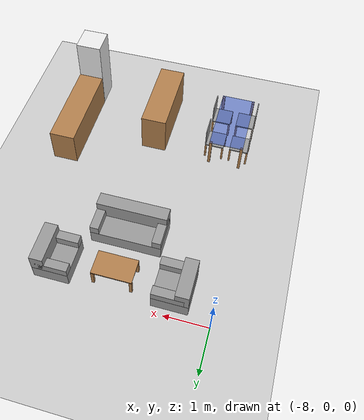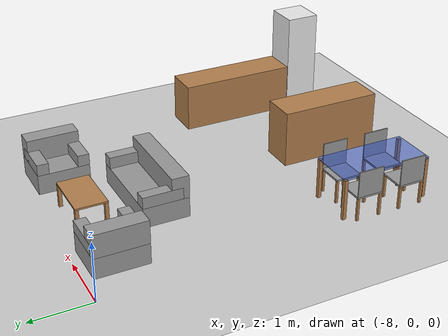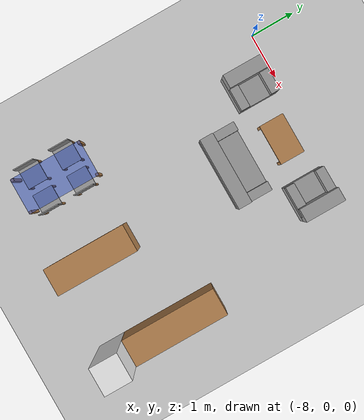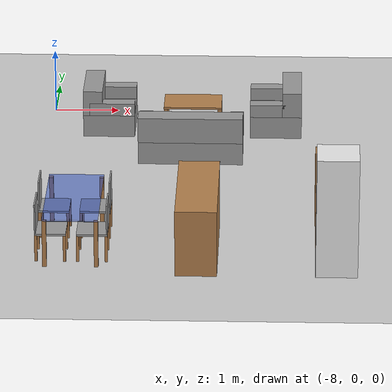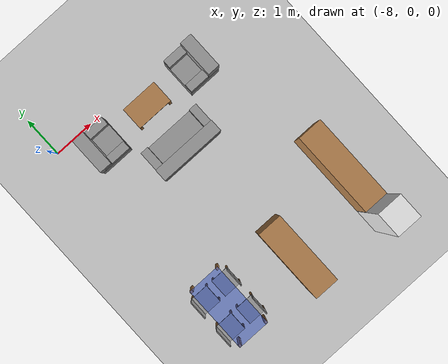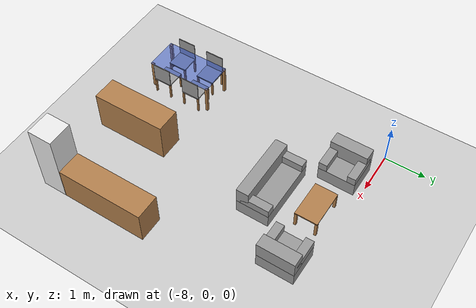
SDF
<sdf version="1.4">
 <world name="GrannyAnnie">
  <model name="ground_plane">
   <static>1</static>
   <link name="link">
    <collision name="collision">
     <geometry><plane><normal>0 0 1</normal><size>100 100</size></plane></geometry>
     <surface><friction><ode><mu>100</mu><mu2>100</mu2></ode></friction></surface>
    </collision>
    <visual name="visual">
     <cast_shadows>0</cast_shadows>
     <geometry><plane><normal>0 0 1</normal><size>100 100</size></plane></geometry>
     <material>
      <script><uri>file://media/materials/scripts/gazebo.material</uri><name>Gazebo/Grey</name></script>
     </material>
    </visual>
    <velocity_decay><linear>0</linear><angular>0</angular></velocity_decay>
   </link>
  </model>
  <model name="mesa_comedor">
   <link name="mesa_link">
    <inertial>
     <pose>1.58603e-17 0 0.513571 0 -0 0</pose>
     <mass>7</mass>
     <inertia>
      <ixx>1.28229</ixx>
      <ixy>0</ixy>
      <ixz>5.70179e-17</ixz>
      <iyy>3.10629</iyy>
      <iyz>0</iyz>
      <izz>3.4192</izz>
     </inertia>
    </inertial>
    <collision name="mesa_link_collision">
     <pose>0 0 0.725 0 -0 0</pose>
     <geometry><box><size>1.6 0.8 0.03</size></box></geometry>
     <surface><friction><ode><mu>100</mu><mu2>100</mu2></ode></friction></surface>
    </collision>
    <collision name="mesa_link_collision_pata_1_link">
     <pose>0.77 0.37 0.355 0 -0 0</pose>
     <geometry><box><size>0.06 0.06 0.71</size></box></geometry>
     <surface><friction><ode><mu>100</mu><mu2>100</mu2></ode></friction></surface>
     <surface><friction><ode><mu>100</mu><mu2>100</mu2></ode></friction></surface>
    </collision>
    <collision name="mesa_link_collision_pata_2_link">
     <pose>0.77 -0.37 0.355 0 -0 0</pose>
     <geometry><box><size>0.06 0.06 0.71</size></box></geometry>
     <surface><friction><ode><mu>100</mu><mu2>100</mu2></ode></friction></surface>
     <surface><friction><ode><mu>100</mu><mu2>100</mu2></ode></friction></surface>
    </collision>
    <collision name="mesa_link_collision_pata_3_link">
     <pose>-0.77 -0.37 0.355 0 -0 0</pose>
     <geometry><box><size>0.06 0.06 0.71</size></box></geometry>
     <surface><friction><ode><mu>100</mu><mu2>100</mu2></ode></friction></surface>
     <surface><friction><ode><mu>100</mu><mu2>100</mu2></ode></friction></surface>
    </collision>
    <collision name="mesa_link_collision_pata_4_link">
     <pose>-0.77 0.37 0.355 0 -0 0</pose>
     <geometry><box><size>0.06 0.06 0.71</size></box></geometry>
     <surface><friction><ode><mu>100</mu><mu2>100</mu2></ode></friction></surface>
     <surface><friction><ode><mu>100</mu><mu2>100</mu2></ode></friction></surface>
    </collision>
    <visual name="mesa_link_visual">
     <pose>0 0 0.725 0 -0 0</pose>
     <geometry><box><size>1.6 0.8 0.03</size></box></geometry>
     <material><script><name>Gazebo/BlueTransparent</name><uri>__default__</uri></script></material>
    </visual>
    <visual name="mesa_link_visual_pata_1_link">
     <pose>0.77 0.37 0.355 0 -0 0</pose>
     <geometry><box><size>0.06 0.06 0.71</size></box></geometry>
     <material><script><name>Gazebo/Wood</name><uri>__default__</uri></script></material>
    </visual>
    <visual name="mesa_link_visual_pata_2_link">
     <pose>0.77 -0.37 0.355 0 -0 0</pose>
     <geometry><box><size>0.06 0.06 0.71</size></box></geometry>
     <material><script><name>Gazebo/Wood</name><uri>__default__</uri></script></material>
    </visual>
    <visual name="mesa_link_visual_pata_3_link">
     <pose>-0.77 -0.37 0.355 0 -0 0</pose>
     <geometry><box><size>0.06 0.06 0.71</size></box></geometry>
     <material><script><name>Gazebo/Wood</name><uri>__default__</uri></script></material>
    </visual>
    <visual name="mesa_link_visual_pata_4_link">
     <pose>-0.77 0.37 0.355 0 -0 0</pose>
     <geometry><box><size>0.06 0.06 0.71</size></box></geometry>
     <material><script><name>Gazebo/Wood</name><uri>__default__</uri></script></material>
    </visual>
    <velocity_decay><linear>0</linear><angular>0</angular></velocity_decay>
    <velocity_decay><linear>0</linear><angular>0</angular></velocity_decay>
    <velocity_decay><linear>0</linear><angular>0</angular></velocity_decay>
    <velocity_decay><linear>0</linear><angular>0</angular></velocity_decay>
    <velocity_decay><linear>0</linear><angular>0</angular></velocity_decay>
    <self_collide>1</self_collide>
   </link>
   <pose>-7.4 -5 0 0 -0 1.57</pose>
   <static>0</static>
  </model>
  <model name="silla_1">
   <link name="silla_link">
    <inertial>
     <pose>0.0215 0 0.353 0 -0 0</pose>
     <mass>2</mass>
     <inertia>
      <ixx>0.674432</ixx>
      <ixy>0</ixy>
      <ixz>-0.012986</ixz>
      <iyy>0.682753</iyy>
      <iyz>0</iyz>
      <izz>0.675561</izz>
     </inertia>
    </inertial>
    <collision name="silla_link_collision">
     <pose>0 0 0.415 0 -0 0</pose>
     <geometry><box><size>0.45 0.45 0.03</size></box></geometry>
     <surface><friction><ode><mu>100</mu><mu2>100</mu2></ode></friction></surface>
    </collision>
    <collision name="silla_link_collision_pata_1_link">
     <pose>0.205 0.205 0.2 0 -0 0</pose>
     <geometry><box><size>0.04 0.04 0.4</size></box></geometry>
     <surface><friction><ode><mu>100</mu><mu2>100</mu2></ode></friction></surface>
     <surface><friction><ode><mu>100</mu><mu2>100</mu2></ode></friction></surface>
    </collision>
    <collision name="silla_link_collision_pata_2_link">
     <pose>0.205 -0.205 0.2 0 -0 0</pose>
     <geometry><box><size>0.04 0.04 0.4</size></box></geometry>
     <surface><friction><ode><mu>100</mu><mu2>100</mu2></ode></friction></surface>
     <surface><friction><ode><mu>100</mu><mu2>100</mu2></ode></friction></surface>
    </collision>
    <collision name="silla_link_collision_pata_3_link">
     <pose>-0.205 -0.205 0.2 0 -0 0</pose>
     <geometry><box><size>0.04 0.04 0.4</size></box></geometry>
     <surface><friction><ode><mu>100</mu><mu2>100</mu2></ode></friction></surface>
     <surface><friction><ode><mu>100</mu><mu2>100</mu2></ode></friction></surface>
    </collision>
    <collision name="silla_link_collision_pata_4_link">
     <pose>-0.205 0.205 0.2 0 -0 0</pose>
     <geometry><box><size>0.04 0.04 0.4</size></box></geometry>
     <surface><friction><ode><mu>100</mu><mu2>100</mu2></ode></friction></surface>
     <surface><friction><ode><mu>100</mu><mu2>100</mu2></ode></friction></surface>
    </collision>
    <collision name="silla_link_collision_respaldo_link">
     <pose>0.215 0 0.655 0 -0 0</pose>
     <geometry><box><size>0.02 0.45 0.45</size></box></geometry>
     <surface><friction><ode><mu>100</mu><mu2>100</mu2></ode></friction></surface>
     <surface><friction><ode><mu>100</mu><mu2>100</mu2></ode></friction></surface>
    </collision>
    <visual name="silla_link_visual">
     <pose>0 0 0.415 0 -0 0</pose>
     <geometry><box><size>0.45 0.45 0.03</size></box></geometry>
     <material><script><name>Gazebo/Grey</name><uri>__default__</uri></script></material>
    </visual>
    <visual name="silla_link_visual_pata_1_link">
     <pose>0.205 0.205 0.2 0 -0 0</pose>
     <geometry><box><size>0.04 0.04 0.4</size></box></geometry>
     <material><script><name>Gazebo/Wood</name><uri>__default__</uri></script></material>
    </visual>
    <visual name="silla_link_visual_pata_2_link">
     <pose>0.205 -0.205 0.2 0 -0 0</pose>
     <geometry><box><size>0.04 0.04 0.4</size></box></geometry>
     <material><script><name>Gazebo/Wood</name><uri>__default__</uri></script></material>
    </visual>
    <visual name="silla_link_visual_pata_3_link">
     <pose>-0.205 -0.205 0.2 0 -0 0</pose>
     <geometry><box><size>0.04 0.04 0.4</size></box></geometry>
     <material><script><name>Gazebo/Wood</name><uri>__default__</uri></script></material>
    </visual>
    <visual name="silla_link_visual_pata_4_link">
     <pose>-0.205 0.205 0.2 0 -0 0</pose>
     <geometry><box><size>0.04 0.04 0.4</size></box></geometry>
     <material><script><name>Gazebo/Wood</name><uri>__default__</uri></script></material>
    </visual>
    <visual name="silla_link_visual_respaldo_link">
     <pose>0.215 0 0.655 0 -0 0</pose>
     <geometry><box><size>0.02 0.45 0.45</size></box></geometry>
     <material><script><name>Gazebo/Grey</name><uri>__default__</uri></script></material>
    </visual>
    <velocity_decay><linear>0</linear><angular>0</angular></velocity_decay>
    <velocity_decay><linear>0</linear><angular>0</angular></velocity_decay>
    <velocity_decay><linear>0</linear><angular>0</angular></velocity_decay>
    <velocity_decay><linear>0</linear><angular>0</angular></velocity_decay>
    <velocity_decay><linear>0</linear><angular>0</angular></velocity_decay>
    <velocity_decay><linear>0</linear><angular>0</angular></velocity_decay>
    <self_collide>1</self_collide>
   </link>
   <pose>-7.1 -5.4 0 0 -0 0</pose>
   <static>0</static>
  </model>
  <model name="silla_2">
   <link name="silla_link">
    <inertial>
     <pose>0.0215 0 0.353 0 -0 0</pose>
     <mass>2</mass>
     <inertia>
      <ixx>0.674432</ixx>
      <ixy>0</ixy>
      <ixz>-0.012986</ixz>
      <iyy>0.682753</iyy>
      <iyz>0</iyz>
      <izz>0.675561</izz>
     </inertia>
    </inertial>
    <collision name="silla_link_collision">
     <pose>0 0 0.415 0 -0 0</pose>
     <geometry><box><size>0.45 0.45 0.03</size></box></geometry>
     <surface><friction><ode><mu>100</mu><mu2>100</mu2></ode></friction></surface>
    </collision>
    <collision name="silla_link_collision_pata_1_link">
     <pose>0.205 0.205 0.2 0 -0 0</pose>
     <geometry><box><size>0.04 0.04 0.4</size></box></geometry>
     <surface><friction><ode><mu>100</mu><mu2>100</mu2></ode></friction></surface>
     <surface><friction><ode><mu>100</mu><mu2>100</mu2></ode></friction></surface>
    </collision>
    <collision name="silla_link_collision_pata_2_link">
     <pose>0.205 -0.205 0.2 0 -0 0</pose>
     <geometry><box><size>0.04 0.04 0.4</size></box></geometry>
     <surface><friction><ode><mu>100</mu><mu2>100</mu2></ode></friction></surface>
     <surface><friction><ode><mu>100</mu><mu2>100</mu2></ode></friction></surface>
    </collision>
    <collision name="silla_link_collision_pata_3_link">
     <pose>-0.205 -0.205 0.2 0 -0 0</pose>
     <geometry><box><size>0.04 0.04 0.4</size></box></geometry>
     <surface><friction><ode><mu>100</mu><mu2>100</mu2></ode></friction></surface>
     <surface><friction><ode><mu>100</mu><mu2>100</mu2></ode></friction></surface>
    </collision>
    <collision name="silla_link_collision_pata_4_link">
     <pose>-0.205 0.205 0.2 0 -0 0</pose>
     <geometry><box><size>0.04 0.04 0.4</size></box></geometry>
     <surface><friction><ode><mu>100</mu><mu2>100</mu2></ode></friction></surface>
     <surface><friction><ode><mu>100</mu><mu2>100</mu2></ode></friction></surface>
    </collision>
    <collision name="silla_link_collision_respaldo_link">
     <pose>0.215 0 0.655 0 -0 0</pose>
     <geometry><box><size>0.02 0.45 0.45</size></box></geometry>
     <surface><friction><ode><mu>100</mu><mu2>100</mu2></ode></friction></surface>
     <surface><friction><ode><mu>100</mu><mu2>100</mu2></ode></friction></surface>
    </collision>
    <visual name="silla_link_visual">
     <pose>0 0 0.415 0 -0 0</pose>
     <geometry><box><size>0.45 0.45 0.03</size></box></geometry>
     <material><script><name>Gazebo/Grey</name><uri>__default__</uri></script></material>
    </visual>
    <visual name="silla_link_visual_pata_1_link">
     <pose>0.205 0.205 0.2 0 -0 0</pose>
     <geometry><box><size>0.04 0.04 0.4</size></box></geometry>
     <material><script><name>Gazebo/Wood</name><uri>__default__</uri></script></material>
    </visual>
    <visual name="silla_link_visual_pata_2_link">
     <pose>0.205 -0.205 0.2 0 -0 0</pose>
     <geometry><box><size>0.04 0.04 0.4</size></box></geometry>
     <material><script><name>Gazebo/Wood</name><uri>__default__</uri></script></material>
    </visual>
    <visual name="silla_link_visual_pata_3_link">
     <pose>-0.205 -0.205 0.2 0 -0 0</pose>
     <geometry><box><size>0.04 0.04 0.4</size></box></geometry>
     <material><script><name>Gazebo/Wood</name><uri>__default__</uri></script></material>
    </visual>
    <visual name="silla_link_visual_pata_4_link">
     <pose>-0.205 0.205 0.2 0 -0 0</pose>
     <geometry><box><size>0.04 0.04 0.4</size></box></geometry>
     <material><script><name>Gazebo/Wood</name><uri>__default__</uri></script></material>
    </visual>
    <visual name="silla_link_visual_respaldo_link">
     <pose>0.215 0 0.655 0 -0 0</pose>
     <geometry><box><size>0.02 0.45 0.45</size></box></geometry>
     <material><script><name>Gazebo/Grey</name><uri>__default__</uri></script></material>
    </visual>
    <velocity_decay><linear>0</linear><angular>0</angular></velocity_decay>
    <velocity_decay><linear>0</linear><angular>0</angular></velocity_decay>
    <velocity_decay><linear>0</linear><angular>0</angular></velocity_decay>
    <velocity_decay><linear>0</linear><angular>0</angular></velocity_decay>
    <velocity_decay><linear>0</linear><angular>0</angular></velocity_decay>
    <velocity_decay><linear>0</linear><angular>0</angular></velocity_decay>
    <self_collide>1</self_collide>
   </link>
   <pose>-7.1 -4.6 0 0 -0 0</pose>
   <static>0</static>
  </model>
  <model name="silla_3">
   <link name="silla_link">
    <inertial>
     <pose>0.0215 0 0.353 0 -0 0</pose>
     <mass>2</mass>
     <inertia>
      <ixx>0.674432</ixx>
      <ixy>0</ixy>
      <ixz>-0.012986</ixz>
      <iyy>0.682753</iyy>
      <iyz>0</iyz>
      <izz>0.675561</izz>
     </inertia>
    </inertial>
    <collision name="silla_link_collision">
     <pose>0 0 0.415 0 -0 0</pose>
     <geometry><box><size>0.45 0.45 0.03</size></box></geometry>
     <surface><friction><ode><mu>100</mu><mu2>100</mu2></ode></friction></surface>
    </collision>
    <collision name="silla_link_collision_pata_1_link">
     <pose>0.205 0.205 0.2 0 -0 0</pose>
     <geometry><box><size>0.04 0.04 0.4</size></box></geometry>
     <surface><friction><ode><mu>100</mu><mu2>100</mu2></ode></friction></surface>
     <surface><friction><ode><mu>100</mu><mu2>100</mu2></ode></friction></surface>
    </collision>
    <collision name="silla_link_collision_pata_2_link">
     <pose>0.205 -0.205 0.2 0 -0 0</pose>
     <geometry><box><size>0.04 0.04 0.4</size></box></geometry>
     <surface><friction><ode><mu>100</mu><mu2>100</mu2></ode></friction></surface>
     <surface><friction><ode><mu>100</mu><mu2>100</mu2></ode></friction></surface>
    </collision>
    <collision name="silla_link_collision_pata_3_link">
     <pose>-0.205 -0.205 0.2 0 -0 0</pose>
     <geometry><box><size>0.04 0.04 0.4</size></box></geometry>
     <surface><friction><ode><mu>100</mu><mu2>100</mu2></ode></friction></surface>
     <surface><friction><ode><mu>100</mu><mu2>100</mu2></ode></friction></surface>
    </collision>
    <collision name="silla_link_collision_pata_4_link">
     <pose>-0.205 0.205 0.2 0 -0 0</pose>
     <geometry><box><size>0.04 0.04 0.4</size></box></geometry>
     <surface><friction><ode><mu>100</mu><mu2>100</mu2></ode></friction></surface>
     <surface><friction><ode><mu>100</mu><mu2>100</mu2></ode></friction></surface>
    </collision>
    <collision name="silla_link_collision_respaldo_link">
     <pose>0.215 0 0.655 0 -0 0</pose>
     <geometry><box><size>0.02 0.45 0.45</size></box></geometry>
     <surface><friction><ode><mu>100</mu><mu2>100</mu2></ode></friction></surface>
     <surface><friction><ode><mu>100</mu><mu2>100</mu2></ode></friction></surface>
    </collision>
    <visual name="silla_link_visual">
     <pose>0 0 0.415 0 -0 0</pose>
     <geometry><box><size>0.45 0.45 0.03</size></box></geometry>
     <material><script><name>Gazebo/Grey</name><uri>__default__</uri></script></material>
    </visual>
    <visual name="silla_link_visual_pata_1_link">
     <pose>0.205 0.205 0.2 0 -0 0</pose>
     <geometry><box><size>0.04 0.04 0.4</size></box></geometry>
     <material><script><name>Gazebo/Wood</name><uri>__default__</uri></script></material>
    </visual>
    <visual name="silla_link_visual_pata_2_link">
     <pose>0.205 -0.205 0.2 0 -0 0</pose>
     <geometry><box><size>0.04 0.04 0.4</size></box></geometry>
     <material><script><name>Gazebo/Wood</name><uri>__default__</uri></script></material>
    </visual>
    <visual name="silla_link_visual_pata_3_link">
     <pose>-0.205 -0.205 0.2 0 -0 0</pose>
     <geometry><box><size>0.04 0.04 0.4</size></box></geometry>
     <material><script><name>Gazebo/Wood</name><uri>__default__</uri></script></material>
    </visual>
    <visual name="silla_link_visual_pata_4_link">
     <pose>-0.205 0.205 0.2 0 -0 0</pose>
     <geometry><box><size>0.04 0.04 0.4</size></box></geometry>
     <material><script><name>Gazebo/Wood</name><uri>__default__</uri></script></material>
    </visual>
    <visual name="silla_link_visual_respaldo_link">
     <pose>0.215 0 0.655 0 -0 0</pose>
     <geometry><box><size>0.02 0.45 0.45</size></box></geometry>
     <material><script><name>Gazebo/Grey</name><uri>__default__</uri></script></material>
    </visual>
    <velocity_decay><linear>0</linear><angular>0</angular></velocity_decay>
    <velocity_decay><linear>0</linear><angular>0</angular></velocity_decay>
    <velocity_decay><linear>0</linear><angular>0</angular></velocity_decay>
    <velocity_decay><linear>0</linear><angular>0</angular></velocity_decay>
    <velocity_decay><linear>0</linear><angular>0</angular></velocity_decay>
    <velocity_decay><linear>0</linear><angular>0</angular></velocity_decay>
    <self_collide>1</self_collide>
   </link>
   <pose>-7.7 -5.4 0 0 -0 3.14</pose>
   <static>0</static>
  </model>
  <model name="silla_4">
   <link name="silla_link">
    <inertial>
     <pose>0.0215 0 0.353 0 -0 0</pose>
     <mass>2</mass>
     <inertia>
      <ixx>0.674432</ixx>
      <ixy>0</ixy>
      <ixz>-0.012986</ixz>
      <iyy>0.682753</iyy>
      <iyz>0</iyz>
      <izz>0.675561</izz>
     </inertia>
    </inertial>
    <collision name="silla_link_collision">
     <pose>0 0 0.415 0 -0 0</pose>
     <geometry><box><size>0.45 0.45 0.03</size></box></geometry>
     <surface><friction><ode><mu>100</mu><mu2>100</mu2></ode></friction></surface>
    </collision>
    <collision name="silla_link_collision_pata_1_link">
     <pose>0.205 0.205 0.2 0 -0 0</pose>
     <geometry><box><size>0.04 0.04 0.4</size></box></geometry>
     <surface><friction><ode><mu>100</mu><mu2>100</mu2></ode></friction></surface>
     <surface><friction><ode><mu>100</mu><mu2>100</mu2></ode></friction></surface>
    </collision>
    <collision name="silla_link_collision_pata_2_link">
     <pose>0.205 -0.205 0.2 0 -0 0</pose>
     <geometry><box><size>0.04 0.04 0.4</size></box></geometry>
     <surface><friction><ode><mu>100</mu><mu2>100</mu2></ode></friction></surface>
     <surface><friction><ode><mu>100</mu><mu2>100</mu2></ode></friction></surface>
    </collision>
    <collision name="silla_link_collision_pata_3_link">
     <pose>-0.205 -0.205 0.2 0 -0 0</pose>
     <geometry><box><size>0.04 0.04 0.4</size></box></geometry>
     <surface><friction><ode><mu>100</mu><mu2>100</mu2></ode></friction></surface>
     <surface><friction><ode><mu>100</mu><mu2>100</mu2></ode></friction></surface>
    </collision>
    <collision name="silla_link_collision_pata_4_link">
     <pose>-0.205 0.205 0.2 0 -0 0</pose>
     <geometry><box><size>0.04 0.04 0.4</size></box></geometry>
     <surface><friction><ode><mu>100</mu><mu2>100</mu2></ode></friction></surface>
     <surface><friction><ode><mu>100</mu><mu2>100</mu2></ode></friction></surface>
    </collision>
    <collision name="silla_link_collision_respaldo_link">
     <pose>0.215 0 0.655 0 -0 0</pose>
     <geometry><box><size>0.02 0.45 0.45</size></box></geometry>
     <surface><friction><ode><mu>100</mu><mu2>100</mu2></ode></friction></surface>
     <surface><friction><ode><mu>100</mu><mu2>100</mu2></ode></friction></surface>
    </collision>
    <visual name="silla_link_visual">
     <pose>0 0 0.415 0 -0 0</pose>
     <geometry><box><size>0.45 0.45 0.03</size></box></geometry>
     <material><script><name>Gazebo/Grey</name><uri>__default__</uri></script></material>
    </visual>
    <visual name="silla_link_visual_pata_1_link">
     <pose>0.205 0.205 0.2 0 -0 0</pose>
     <geometry><box><size>0.04 0.04 0.4</size></box></geometry>
     <material><script><name>Gazebo/Wood</name><uri>__default__</uri></script></material>
    </visual>
    <visual name="silla_link_visual_pata_2_link">
     <pose>0.205 -0.205 0.2 0 -0 0</pose>
     <geometry><box><size>0.04 0.04 0.4</size></box></geometry>
     <material><script><name>Gazebo/Wood</name><uri>__default__</uri></script></material>
    </visual>
    <visual name="silla_link_visual_pata_3_link">
     <pose>-0.205 -0.205 0.2 0 -0 0</pose>
     <geometry><box><size>0.04 0.04 0.4</size></box></geometry>
     <material><script><name>Gazebo/Wood</name><uri>__default__</uri></script></material>
    </visual>
    <visual name="silla_link_visual_pata_4_link">
     <pose>-0.205 0.205 0.2 0 -0 0</pose>
     <geometry><box><size>0.04 0.04 0.4</size></box></geometry>
     <material><script><name>Gazebo/Wood</name><uri>__default__</uri></script></material>
    </visual>
    <visual name="silla_link_visual_respaldo_link">
     <pose>0.215 0 0.655 0 -0 0</pose>
     <geometry><box><size>0.02 0.45 0.45</size></box></geometry>
     <material><script><name>Gazebo/Grey</name><uri>__default__</uri></script></material>
    </visual>
    <velocity_decay><linear>0</linear><angular>0</angular></velocity_decay>
    <velocity_decay><linear>0</linear><angular>0</angular></velocity_decay>
    <velocity_decay><linear>0</linear><angular>0</angular></velocity_decay>
    <velocity_decay><linear>0</linear><angular>0</angular></velocity_decay>
    <velocity_decay><linear>0</linear><angular>0</angular></velocity_decay>
    <velocity_decay><linear>0</linear><angular>0</angular></velocity_decay>
    <self_collide>1</self_collide>
   </link>
   <pose>-7.7 -4.6 0 0 -0 3.14</pose>
   <static>0</static>
  </model>
  <model name="mesa_salon">
   <link name="mesa_link">
    <inertial>
     <pose>1.38778e-17 3.46945e-18 0.3075 0 -0 0</pose>
     <mass>4</mass>
     <inertia>
      <ixx>0.666275</ixx>
      <ixy>1.92593e-34</ixy>
      <ixz>1.70697e-17</ixz>
      <iyy>0.899025</iyy>
      <iyz>4.26742e-18</iyz>
      <izz>0.97285</izz>
     </inertia>
    </inertial>
    <collision name="mesa_link_collision">
     <pose>0 0 0.415 0 -0 0</pose>
     <geometry><box><size>0.9 0.55 0.03</size></box></geometry>
     <surface><friction><ode><mu>100</mu><mu2>100</mu2></ode></friction></surface>
    </collision>
    <collision name="mesa_link_collision_pata_1_link">
     <pose>0.42 0.245 0.2 0 -0 0</pose>
     <geometry><box><size>0.06 0.06 0.4</size></box></geometry>
     <surface><friction><ode><mu>100</mu><mu2>100</mu2></ode></friction></surface>
     <surface><friction><ode><mu>100</mu><mu2>100</mu2></ode></friction></surface>
    </collision>
    <collision name="mesa_link_collision_pata_2_link">
     <pose>0.42 -0.245 0.2 0 -0 0</pose>
     <geometry><box><size>0.06 0.06 0.4</size></box></geometry>
     <surface><friction><ode><mu>100</mu><mu2>100</mu2></ode></friction></surface>
     <surface><friction><ode><mu>100</mu><mu2>100</mu2></ode></friction></surface>
    </collision>
    <collision name="mesa_link_collision_pata_3_link">
     <pose>-0.42 -0.245 0.2 0 -0 0</pose>
     <geometry><box><size>0.06 0.06 0.4</size></box></geometry>
     <surface><friction><ode><mu>100</mu><mu2>100</mu2></ode></friction></surface>
     <surface><friction><ode><mu>100</mu><mu2>100</mu2></ode></friction></surface>
    </collision>
    <collision name="mesa_link_collision_pata_4_link">
     <pose>-0.42 0.245 0.2 0 -0 0</pose>
     <geometry><box><size>0.06 0.06 0.4</size></box></geometry>
     <surface><friction><ode><mu>100</mu><mu2>100</mu2></ode></friction></surface>
     <surface><friction><ode><mu>100</mu><mu2>100</mu2></ode></friction></surface>
    </collision>
    <visual name="mesa_link_visual">
     <pose>0 0 0.415 0 -0 0</pose>
     <geometry><box><size>0.9 0.55 0.03</size></box></geometry>
     <material><script><name>Gazebo/Wood</name><uri>__default__</uri></script></material>
    </visual>
    <visual name="mesa_link_visual_pata_1_link">
     <pose>0.42 0.245 0.2 0 -0 0</pose>
     <geometry><box><size>0.06 0.06 0.4</size></box></geometry>
     <material><script><name>Gazebo/Wood</name><uri>__default__</uri></script></material>
    </visual>
    <visual name="mesa_link_visual_pata_2_link">
     <pose>0.42 -0.245 0.2 0 -0 0</pose>
     <geometry><box><size>0.06 0.06 0.4</size></box></geometry>
     <material><script><name>Gazebo/Wood</name><uri>__default__</uri></script></material>
    </visual>
    <visual name="mesa_link_visual_pata_3_link">
     <pose>-0.42 -0.245 0.2 0 -0 0</pose>
     <geometry><box><size>0.06 0.06 0.4</size></box></geometry>
     <material><script><name>Gazebo/Wood</name><uri>__default__</uri></script></material>
    </visual>
    <visual name="mesa_link_visual_pata_4_link">
     <pose>-0.42 0.245 0.2 0 -0 0</pose>
     <geometry><box><size>0.06 0.06 0.4</size></box></geometry>
     <material><script><name>Gazebo/Wood</name><uri>__default__</uri></script></material>
    </visual>
    <velocity_decay><linear>0</linear><angular>0</angular></velocity_decay>
    <velocity_decay><linear>0</linear><angular>0</angular></velocity_decay>
    <velocity_decay><linear>0</linear><angular>0</angular></velocity_decay>
    <velocity_decay><linear>0</linear><angular>0</angular></velocity_decay>
    <velocity_decay><linear>0</linear><angular>0</angular></velocity_decay>
    <self_collide>1</self_collide>
   </link>
   <pose>-5.8 -0.6 0 0 -0 0</pose>
   <static>0</static>
  </model>
  <model name="sofa_x2_salon">
   <link name="sofa_link">
    <inertial>
     <pose>0 0.0115385 0.257692 0 -0 0</pose>
     <mass>13</mass>
     <inertia>
      <ixx>0.7625</ixx>
      <ixy>0</ixy>
      <ixz>0</ixz>
      <iyy>1.67673</iyy>
      <iyz>-0.0463462</iyz>
      <izz>1.44577</izz>
     </inertia>
    </inertial>
    <collision name="sofa_link_collision">
     <pose>0 0 0.175 0 -0 0</pose>
     <geometry><box><size>1.6 0.8 0.35</size></box></geometry>
     <surface><friction><ode><mu>100</mu><mu2>100</mu2></ode></friction></surface>
    </collision>
    <collision name="sofa_link_collision_brazo_1_link">
     <pose>0.7 -0.05 0.45 0 -0 0</pose>
     <geometry><box><size>0.2 0.7 0.2</size></box></geometry>
     <surface><friction><ode><mu>100</mu><mu2>100</mu2></ode></friction></surface>
     <surface><friction><ode><mu>100</mu><mu2>100</mu2></ode></friction></surface>
    </collision>
    <collision name="sofa_link_collision_brazo_2_link">
     <pose>-0.7 -0.05 0.45 0 -0 0</pose>
     <geometry><box><size>0.2 0.7 0.2</size></box></geometry>
     <surface><friction><ode><mu>100</mu><mu2>100</mu2></ode></friction></surface>
     <surface><friction><ode><mu>100</mu><mu2>100</mu2></ode></friction></surface>
    </collision>
    <collision name="sofa_link_collision_respaldo_link">
     <pose>0 0.25 0.55 0 -0 0</pose>
     <geometry><box><size>1.6 0.3 0.4</size></box></geometry>
     <surface><friction><ode><mu>100</mu><mu2>100</mu2></ode></friction></surface>
     <surface><friction><ode><mu>100</mu><mu2>100</mu2></ode></friction></surface>
    </collision>
    <visual name="sofa_link_visual">
     <pose>0 0 0.175 0 -0 0</pose>
     <geometry><box><size>1.6 0.8 0.35</size></box></geometry>
     <material><script><name>Gazebo/Grey</name><uri>__default__</uri></script></material>
    </visual>
    <visual name="sofa_link_visual_brazo_1_link">
     <pose>0.7 -0.05 0.45 0 -0 0</pose>
     <geometry><box><size>0.2 0.7 0.2</size></box></geometry>
     <material><script><name>Gazebo/Grey</name><uri>__default__</uri></script></material>
    </visual>
    <visual name="sofa_link_visual_brazo_2_link">
     <pose>-0.7 -0.05 0.45 0 -0 0</pose>
     <geometry><box><size>0.2 0.7 0.2</size></box></geometry>
     <material><script><name>Gazebo/Grey</name><uri>__default__</uri></script></material>
    </visual>
    <visual name="sofa_link_visual_respaldo_link">
     <pose>0 0.25 0.55 0 -0 0</pose>
     <geometry><box><size>1.6 0.3 0.4</size></box></geometry>
     <material><script><name>Gazebo/Grey</name><uri>__default__</uri></script></material>
    </visual>
    <velocity_decay><linear>0</linear><angular>0</angular></velocity_decay>
    <velocity_decay><linear>0</linear><angular>0</angular></velocity_decay>
    <velocity_decay><linear>0</linear><angular>0</angular></velocity_decay>
    <velocity_decay><linear>0</linear><angular>0</angular></velocity_decay>
    <self_collide>1</self_collide>
   </link>
   <pose>-5.8 -1.7 0 0 -0 3.14</pose>
   <static>0</static>
  </model>
  <model name="sofa_x1_1_salon">
   <link name="sofa_link">
    <inertial>
     <pose>0 0.01875 0.309375 0 -0 0</pose>
     <mass>8</mass>
     <inertia>
      <ixx>0.705859</ixx>
      <ixy>0</ixy>
      <ixz>0</ixz>
      <iyy>0.886172</iyy>
      <iyz>-0.0385938</iyz>
      <izz>0.709687</izz>
     </inertia>
    </inertial>
    <collision name="sofa_link_collision">
     <pose>0 0 0.175 0 -0 0</pose>
     <geometry><box><size>0.9 0.8 0.35</size></box></geometry>
     <surface><friction><ode><mu>100</mu><mu2>100</mu2></ode></friction></surface>
    </collision>
    <collision name="sofa_link_collision_brazo_1_link">
     <pose>0.35 -0.05 0.45 0 -0 0</pose>
     <geometry><box><size>0.2 0.7 0.2</size></box></geometry>
     <surface><friction><ode><mu>100</mu><mu2>100</mu2></ode></friction></surface>
     <surface><friction><ode><mu>100</mu><mu2>100</mu2></ode></friction></surface>
    </collision>
    <collision name="sofa_link_collision_brazo_2_link">
     <pose>-0.35 -0.05 0.45 0 -0 0</pose>
     <geometry><box><size>0.2 0.7 0.2</size></box></geometry>
     <surface><friction><ode><mu>100</mu><mu2>100</mu2></ode></friction></surface>
     <surface><friction><ode><mu>100</mu><mu2>100</mu2></ode></friction></surface>
    </collision>
    <collision name="sofa_link_collision_respaldo_link">
     <pose>0 0.25 0.55 0 -0 0</pose>
     <geometry><box><size>0.9 0.3 0.4</size></box></geometry>
     <surface><friction><ode><mu>100</mu><mu2>100</mu2></ode></friction></surface>
     <surface><friction><ode><mu>100</mu><mu2>100</mu2></ode></friction></surface>
    </collision>
    <visual name="sofa_link_visual">
     <pose>0 0 0.175 0 -0 0</pose>
     <geometry><box><size>0.9 0.8 0.35</size></box></geometry>
     <material><script><name>Gazebo/Grey</name><uri>__default__</uri></script></material>
    </visual>
    <visual name="sofa_link_visual_brazo_1_link">
     <pose>0.35 -0.05 0.45 0 -0 0</pose>
     <geometry><box><size>0.2 0.7 0.2</size></box></geometry>
     <material><script><name>Gazebo/Grey</name><uri>__default__</uri></script></material>
    </visual>
    <visual name="sofa_link_visual_brazo_2_link">
     <pose>-0.35 -0.05 0.45 0 -0 0</pose>
     <geometry><box><size>0.2 0.7 0.2</size></box></geometry>
     <material><script><name>Gazebo/Grey</name><uri>__default__</uri></script></material>
    </visual>
    <visual name="sofa_link_visual_respaldo_link">
     <pose>0 0.25 0.55 0 -0 0</pose>
     <geometry><box><size>0.9 0.3 0.4</size></box></geometry>
     <material><script><name>Gazebo/Grey</name><uri>__default__</uri></script></material>
    </visual>
    <velocity_decay><linear>0</linear><angular>0</angular></velocity_decay>
    <velocity_decay><linear>0</linear><angular>0</angular></velocity_decay>
    <velocity_decay><linear>0</linear><angular>0</angular></velocity_decay>
    <velocity_decay><linear>0</linear><angular>0</angular></velocity_decay>
    <self_collide>1</self_collide>
   </link>
   <pose>-4.5 -0.6 0 0 0 -1.57</pose>
   <static>0</static>
  </model>
  <model name="sofa_x1_2_salon">
   <link name="sofa_link">
    <inertial>
     <pose>0 0.01875 0.309375 0 -0 0</pose>
     <mass>8</mass>
     <inertia>
      <ixx>0.705859</ixx>
      <ixy>0</ixy>
      <ixz>0</ixz>
      <iyy>0.886172</iyy>
      <iyz>-0.0385938</iyz>
      <izz>0.709687</izz>
     </inertia>
    </inertial>
    <collision name="sofa_link_collision">
     <pose>0 0 0.175 0 -0 0</pose>
     <geometry><box><size>0.9 0.8 0.35</size></box></geometry>
     <surface><friction><ode><mu>100</mu><mu2>100</mu2></ode></friction></surface>
    </collision>
    <collision name="sofa_link_collision_brazo_1_link">
     <pose>0.35 -0.05 0.45 0 -0 0</pose>
     <geometry><box><size>0.2 0.7 0.2</size></box></geometry>
     <surface><friction><ode><mu>100</mu><mu2>100</mu2></ode></friction></surface>
     <surface><friction><ode><mu>100</mu><mu2>100</mu2></ode></friction></surface>
    </collision>
    <collision name="sofa_link_collision_brazo_2_link">
     <pose>-0.35 -0.05 0.45 0 -0 0</pose>
     <geometry><box><size>0.2 0.7 0.2</size></box></geometry>
     <surface><friction><ode><mu>100</mu><mu2>100</mu2></ode></friction></surface>
     <surface><friction><ode><mu>100</mu><mu2>100</mu2></ode></friction></surface>
    </collision>
    <collision name="sofa_link_collision_respaldo_link">
     <pose>0 0.25 0.55 0 -0 0</pose>
     <geometry><box><size>0.9 0.3 0.4</size></box></geometry>
     <surface><friction><ode><mu>100</mu><mu2>100</mu2></ode></friction></surface>
     <surface><friction><ode><mu>100</mu><mu2>100</mu2></ode></friction></surface>
    </collision>
    <visual name="sofa_link_visual">
     <pose>0 0 0.175 0 -0 0</pose>
     <geometry><box><size>0.9 0.8 0.35</size></box></geometry>
     <material><script><name>Gazebo/Grey</name><uri>__default__</uri></script></material>
    </visual>
    <visual name="sofa_link_visual_brazo_1_link">
     <pose>0.35 -0.05 0.45 0 -0 0</pose>
     <geometry><box><size>0.2 0.7 0.2</size></box></geometry>
     <material><script><name>Gazebo/Grey</name><uri>__default__</uri></script></material>
    </visual>
    <visual name="sofa_link_visual_brazo_2_link">
     <pose>-0.35 -0.05 0.45 0 -0 0</pose>
     <geometry><box><size>0.2 0.7 0.2</size></box></geometry>
     <material><script><name>Gazebo/Grey</name><uri>__default__</uri></script></material>
    </visual>
    <visual name="sofa_link_visual_respaldo_link">
     <pose>0 0.25 0.55 0 -0 0</pose>
     <geometry><box><size>0.9 0.3 0.4</size></box></geometry>
     <material><script><name>Gazebo/Grey</name><uri>__default__</uri></script></material>
    </visual>
    <velocity_decay><linear>0</linear><angular>0</angular></velocity_decay>
    <velocity_decay><linear>0</linear><angular>0</angular></velocity_decay>
    <velocity_decay><linear>0</linear><angular>0</angular></velocity_decay>
    <velocity_decay><linear>0</linear><angular>0</angular></velocity_decay>
    <self_collide>1</self_collide>
   </link>
   <pose>-7.1 -0.6 0 0 -0 1.57</pose>
   <static>0</static>
  </model>
  <model name="encimera">
   <link name="encimera_link">
    <inertial>
     <pose>0 0 0.425 0 -0 0</pose>
     <mass>50</mass>
     <inertia><ixx>5</ixx><ixy>0</ixy><ixz>0</ixz><iyy>5</iyy><iyz>0</iyz><izz>5</izz></inertia>
    </inertial>
    <collision name="encimera_link_collision">
     <pose>0 0 0.425 0 -0 0</pose>
     <geometry><box><size>2.1 0.6 0.85</size></box></geometry>
     <surface><friction><ode><mu>100</mu><mu2>100</mu2></ode></friction></surface>
    </collision>
    <visual name="encimera_link_visual">
     <pose>0 0 0.425 0 -0 0</pose>
     <geometry><box><size>2.1 0.6 0.85</size></box></geometry>
     <material><script><name>Gazebo/Wood</name><uri>__default__</uri></script></material>
    </visual>
    <velocity_decay><linear>0</linear><angular>0</angular></velocity_decay>
    <self_collide>1</self_collide>
   </link>
   <pose>-3.6 -4.39 0 0 -0 1.57</pose>
   <static>0</static>
  </model>
  <model name="barra">
   <link name="barra_link">
    <inertial>
     <pose>0 0 0.5 0 -0 0</pose>
     <mass>50</mass>
     <inertia><ixx>5</ixx><ixy>0</ixy><ixz>0</ixz><iyy>5</iyy><iyz>0</iyz><izz>5</izz></inertia>
    </inertial>
    <collision name="barra_link_collision">
     <pose>0 0 0.5 0 -0 0</pose>
     <geometry><box><size>1.8 0.6 1</size></box></geometry>
     <surface><friction><ode><mu>100</mu><mu2>100</mu2></ode></friction></surface>
    </collision>
    <visual name="barra_link_visual">
     <pose>0 0 0.5 0 -0 0</pose>
     <geometry><box><size>1.8 0.6 1</size></box></geometry>
     <material><script><name>Gazebo/Wood</name><uri>__default__</uri></script></material>
    </visual>
    <velocity_decay><linear>0</linear><angular>0</angular></velocity_decay>
    <self_collide>1</self_collide>
   </link>
   <pose>-5.6 -5.16 0 0 -0 1.57</pose>
   <static>0</static>
  </model>
  <model name="frigo">
   <link name="frigo_link">
    <inertial>
     <pose>0 0 0.9 0 -0 0</pose>
     <mass>50</mass>
     <inertia><ixx>5</ixx><ixy>0</ixy><ixz>0</ixz><iyy>5</iyy><iyz>0</iyz><izz>5</izz></inertia>
    </inertial>
    <collision name="frigo_link_collision">
     <pose>0 0 0.9 0 -0 0</pose>
     <geometry><box><size>0.6 0.6 1.8</size></box></geometry>
     <surface><friction><ode><mu>100</mu><mu2>100</mu2></ode></friction></surface>
    </collision>
    <visual name="frigo_link_visual">
     <pose>0 0 0.9 0 -0 0</pose>
     <geometry><box><size>0.6 0.6 1.8</size></box></geometry>
     <material><script><name>Gazebo/White</name><uri>__default__</uri></script></material>
    </visual>
    <velocity_decay><linear>0</linear><angular>0</angular></velocity_decay>
    <self_collide>1</self_collide>
   </link>
   <pose>-3.6 -5.75 0 0 -0 0</pose>
   <static>0</static>
  </model>
 </world>
</sdf>
